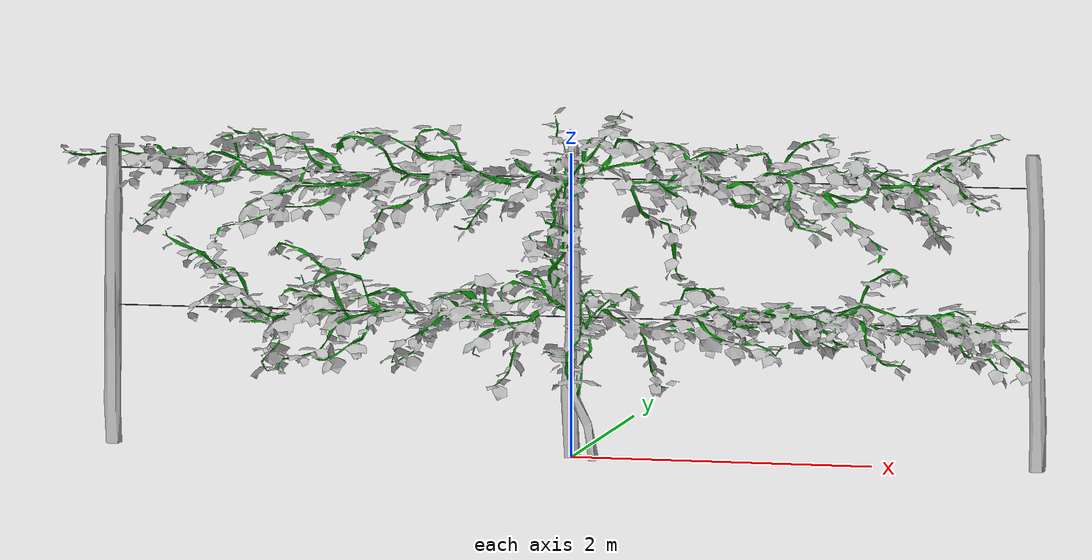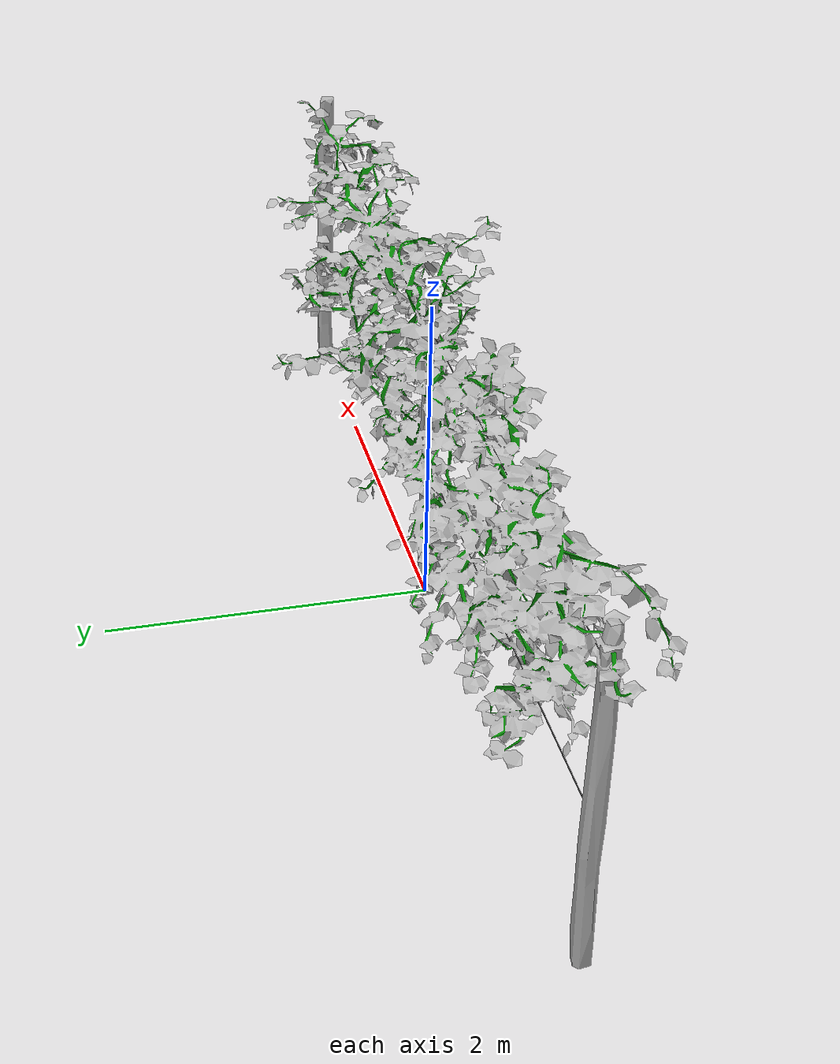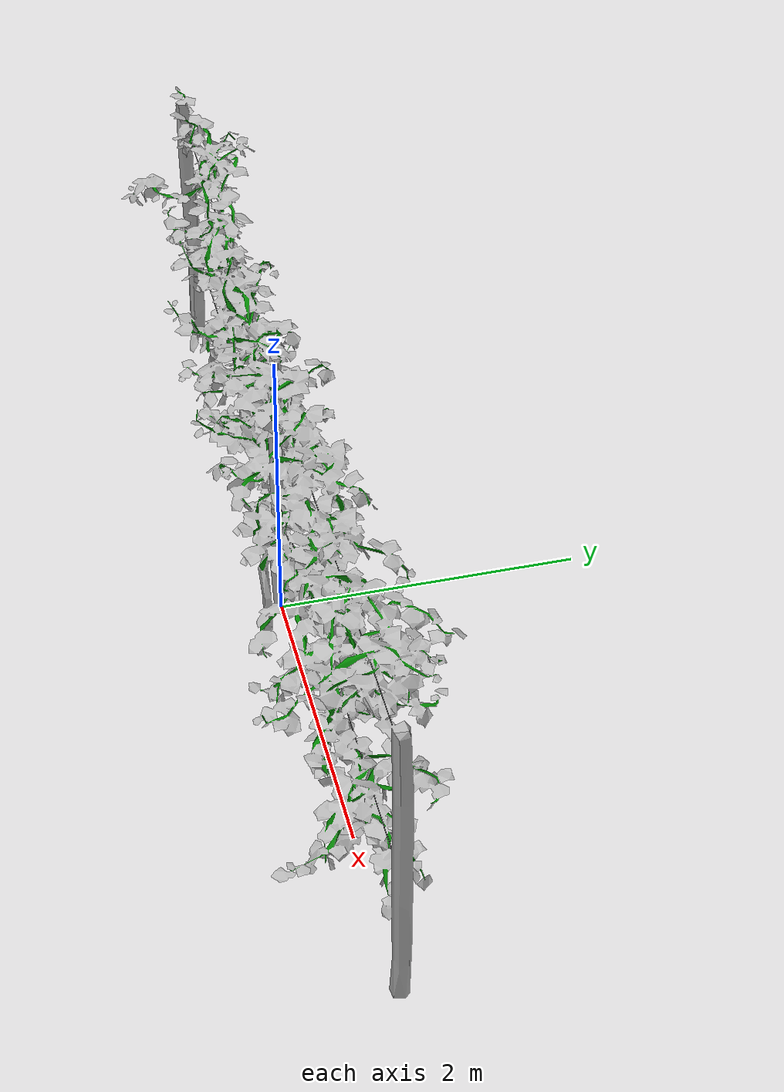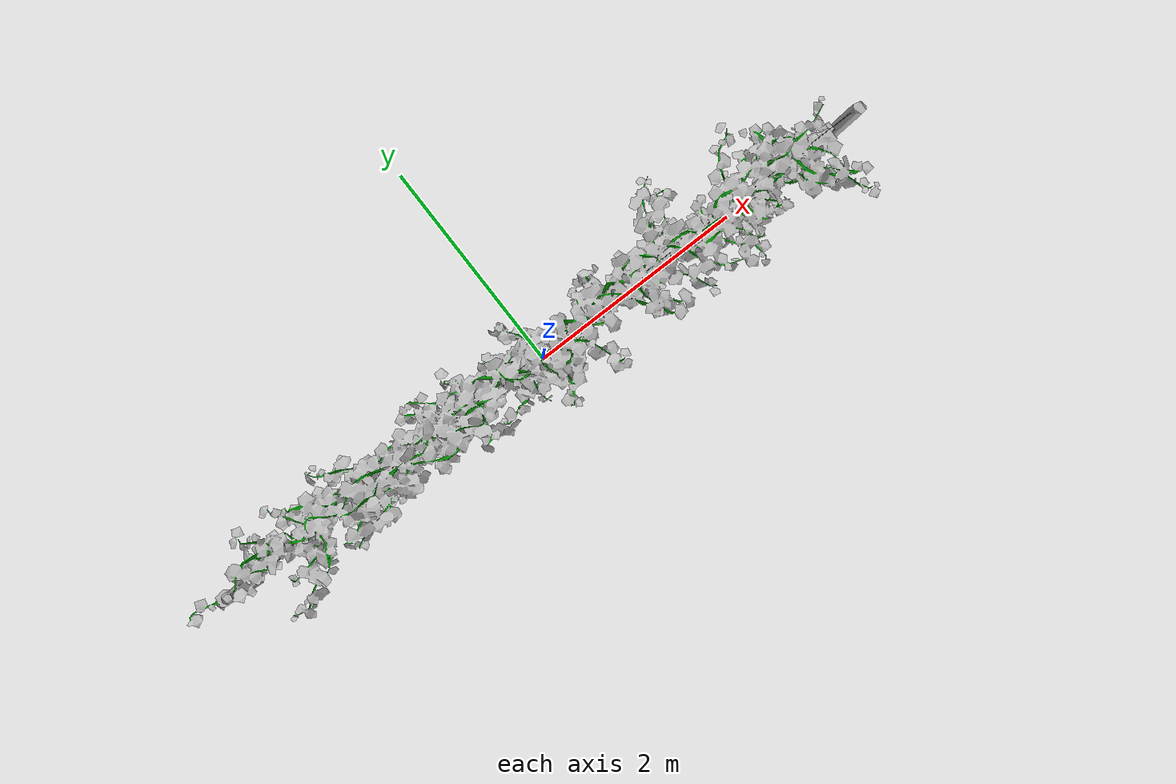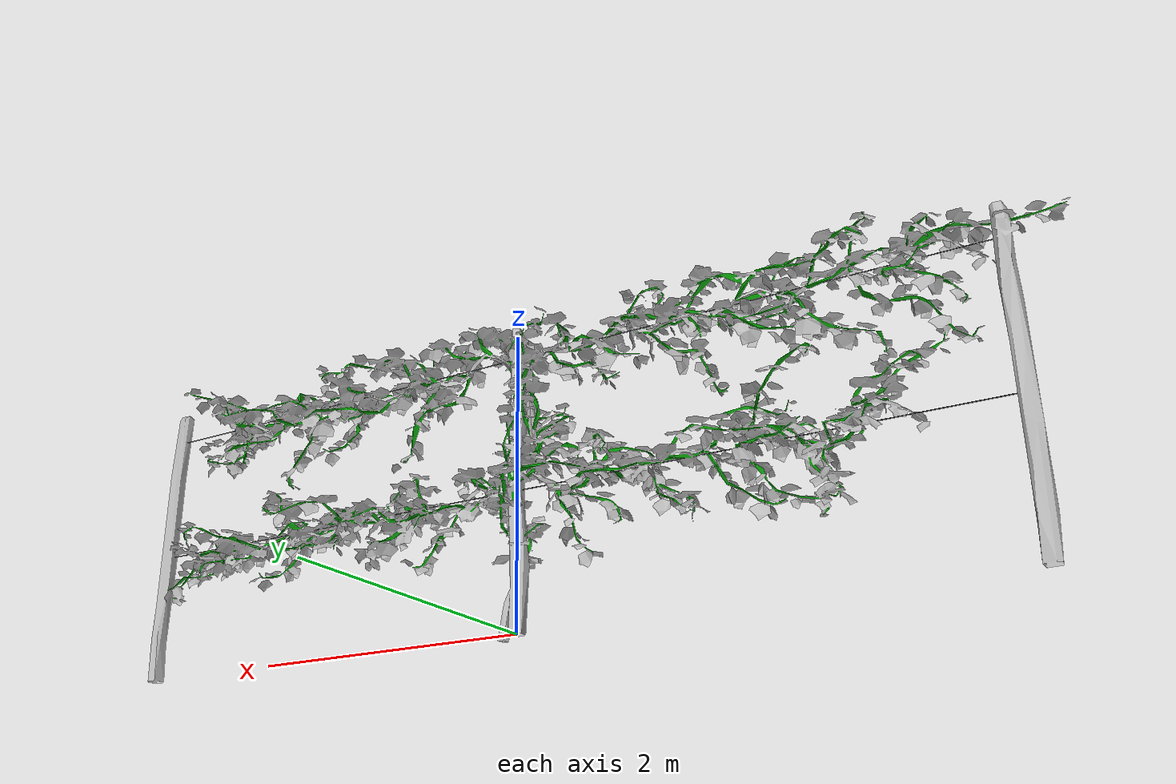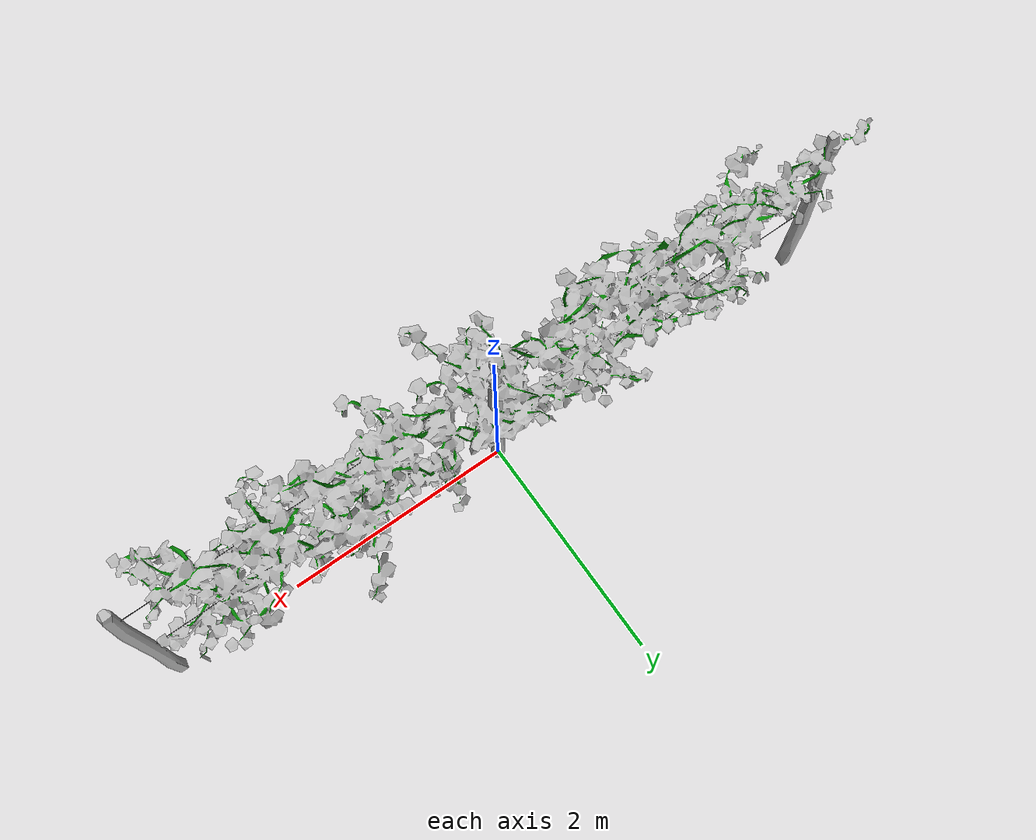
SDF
<?xml version="1.0" ?>
<sdf version="1.6">
  <model name="vine_t0_coarse">
    <static>true</static>
    <link name="link">
      <collision name="collision">
        <geometry>
          <mesh>
            <uri>model://vine_t0_coarse/meshes/vine_t0_coarse.dae</uri>
          </mesh>
        </geometry>
      </collision>
      <visual name="visual">
        <geometry>
          <mesh>
            <uri>model://vine_t0_coarse/meshes/vine_t0_coarse.dae</uri>
          </mesh>
        </geometry>
      </visual>
    </link>
  </model>
</sdf>
